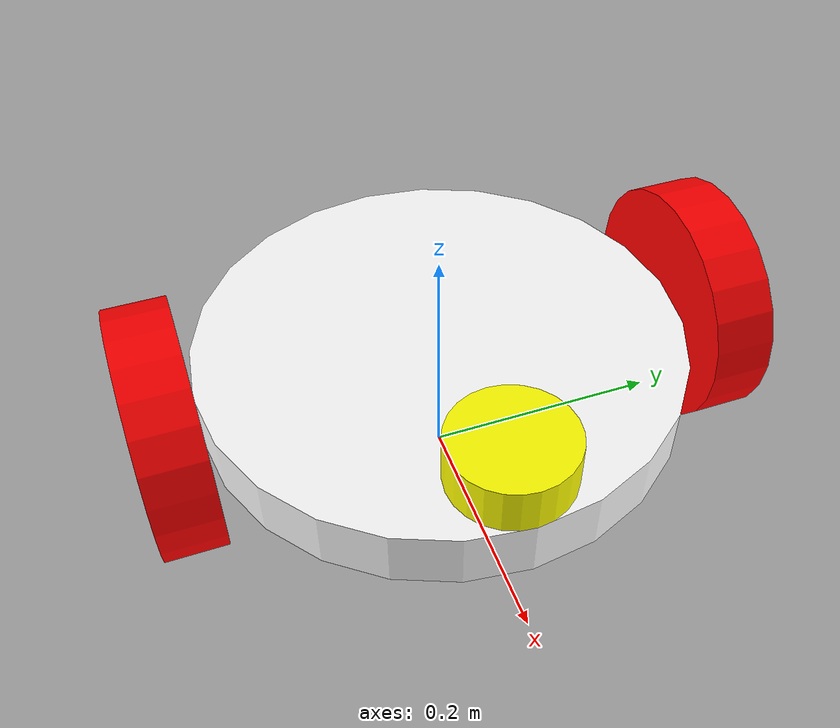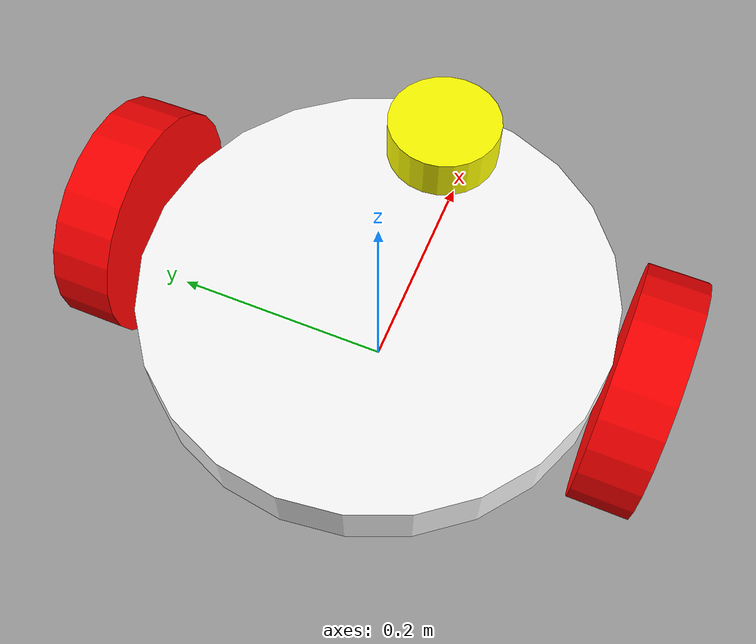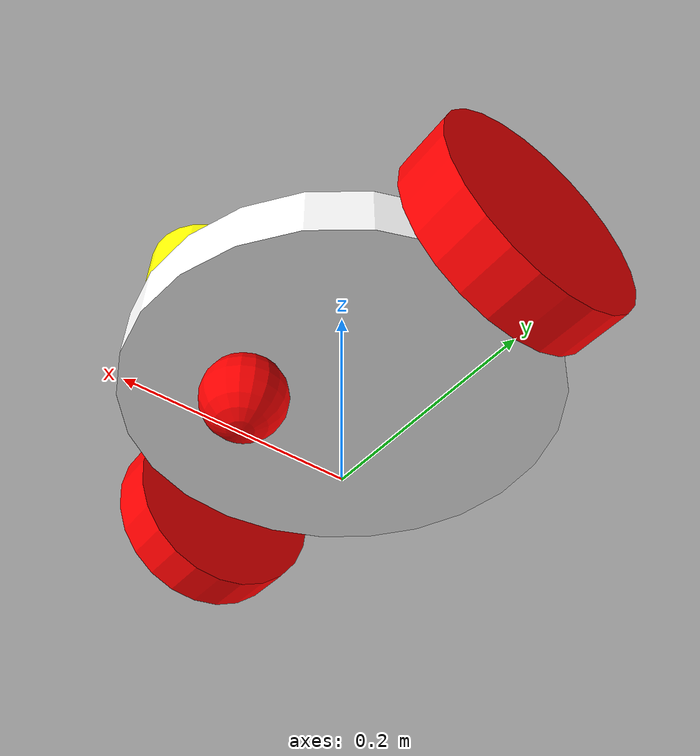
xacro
<?xml version="1.0"?>

<robot name="differential-robot">
	<link name="body">
		<visual>
			<origin rpy="0 0 0" xyz="0 0 0.1" />

			<geometry>
				<cylinder radius="0.2" length="0.05" />
			</geometry>

			<material name="white">
				<color rgba="1 1 1 1" />
			</material>
		</visual>
	</link>

		<link name="left_wheel">
		<visual>
			<origin rpy="0 1.5707 1.5707" xyz="0 0.225 0.1" />

			<geometry>
				<cylinder radius="0.1" length="0.05" />
			</geometry>

			<material name="red">
				<color rgba="1 0 0 1" />
			</material>
		</visual>
	</link>

	<link name="right_wheel">
		<visual>
			<origin rpy="0 1.5707 1.5707" xyz="0 -0.225 0.1" />

			<geometry>
				<cylinder radius="0.1" length="0.05" />
			</geometry>

			<material name="red">
				<color rgba="1 0 0 1" />
			</material>
		</visual>
	</link>

	<link name="front_castor">
		<visual>
			<origin rpy="0 0 0" xyz="0.1 0 0.0375" />

			<geometry>
				<sphere radius="0.0375"/>
			</geometry>

			<material name="red">
				<color rgba="1 0 0 1" />
			</material>
		</visual>
	</link>

	<link name="lidar">
		<visual>

			<origin xyz="0 0 0.02"/>
			<geometry>
				<cylinder radius="0.05" length="0.04"/>
			</geometry>

			<material name="bl">
				<color rgba="1 1 0 1" />
			</material>
		</visual>
	</link>

	<joint name="base_to_right_wheel" type="fixed">
		<parent link="body" />
		<child link="right_wheel" />

	</joint>
	<joint name="base_to_left_wheel" type="fixed">
		<parent link="body" />
		<child link="left_wheel" />

	</joint>
	<joint name="base_to_left_castor" type="fixed">
		<parent link="body" />
		<child link="front_castor" />

	</joint>
	<joint name="base_to_lidar" type="fixed">
		<origin xyz="0.15 0 0.125 "/>
		<parent link="body" />
		<child link="lidar" />

	</joint>
</robot>
